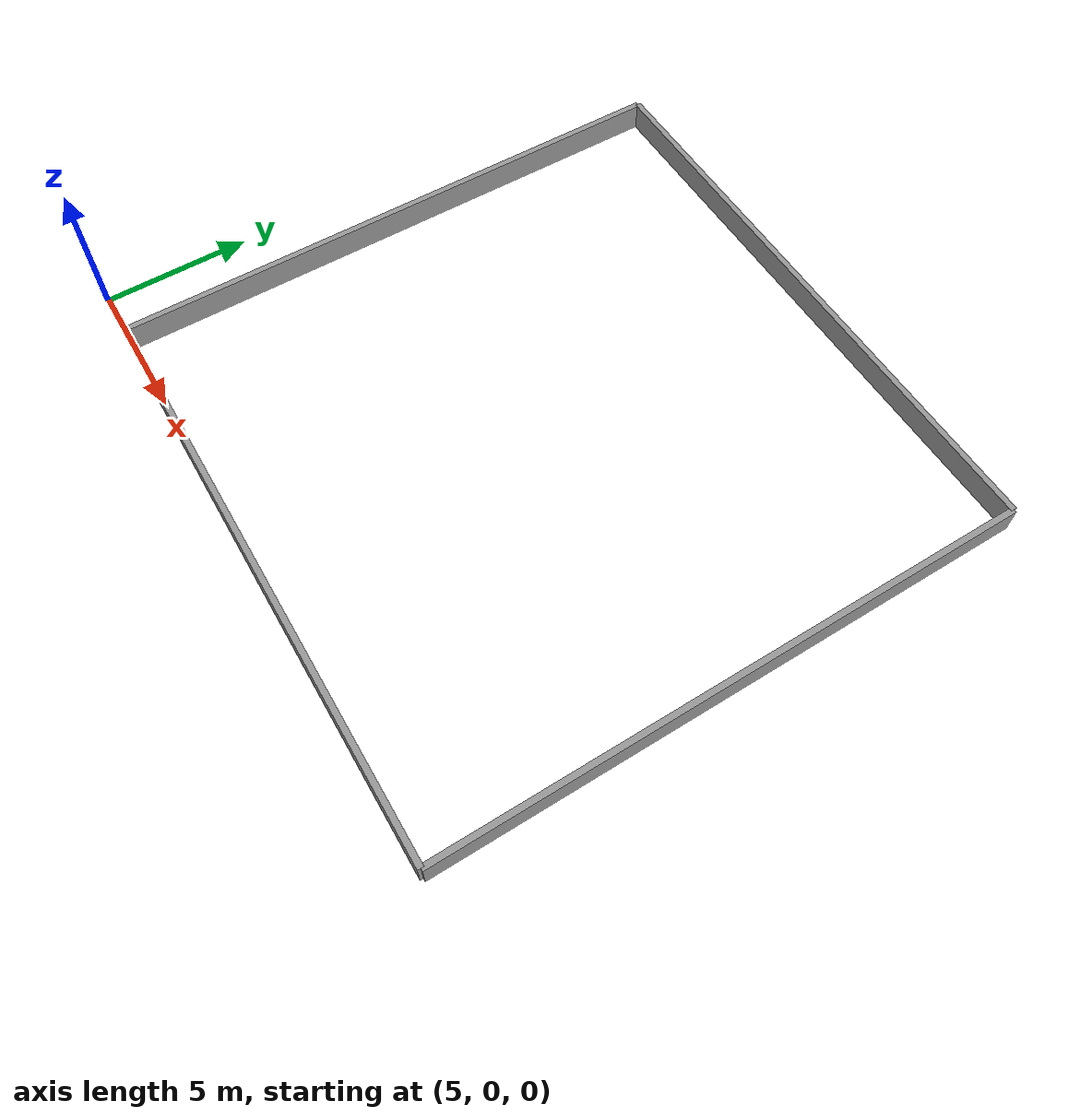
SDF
<?xml version='1.0'?>
<sdf version='1.7'>
  <model name='my_world'>
    <pose>17.3026 9.96227 0 0 -0 0</pose>
    <link name='Wall_0'>
      <collision name='Wall_0_Collision'>
        <geometry>
          <box>
            <size>20.0 0.2 1.0</size>
          </box>
        </geometry>
        <pose>0 0 0.5 0 -0 0</pose>
      </collision>
      <visual name='Wall_0_Visual'>
        <pose>0 0 0.5 0 -0 0</pose>
        <geometry>
          <box>
            <size>20.0 0.2 1.0</size>
          </box>
        </geometry>
        <material>
          <script>
            <uri>file://media/materials/scripts/gazebo.material</uri>
            <name>Gazebo/Grey</name>
          </script>
          <ambient>1 1 1 1</ambient>
        </material>
        <meta>
          <layer>0</layer>
        </meta>
      </visual>
      <pose>0 10.0 0 0 0 0</pose>
    </link>
    <link name='Wall_1'>
      <collision name='Wall_1_Collision'>
        <geometry>
          <box>
            <size>20.0 0.2 1.0</size>
          </box>
        </geometry>
        <pose>0 0 0.5 0 -0 0</pose>
      </collision>
      <visual name='Wall_1_Visual'>
        <pose>0 0 0.5 0 -0 0</pose>
        <geometry>
          <box>
            <size>20.0 0.2 1.0</size>
          </box>
        </geometry>
        <material>
          <script>
            <uri>file://media/materials/scripts/gazebo.material</uri>
            <name>Gazebo/Grey</name>
          </script>
          <ambient>1 1 1 1</ambient>
        </material>
        <meta>
          <layer>0</layer>
        </meta>
      </visual>
      <pose>0 -10.0 0 0 0 0</pose>
    </link>
    <link name='Wall_2'>
      <collision name='Wall_2_Collision'>
        <geometry>
          <box>
            <size>0.2 20.0 1.0</size>
          </box>
        </geometry>
        <pose>0 0 0.5 0 -0 0</pose>
      </collision>
      <visual name='Wall_2_Visual'>
        <pose>0 0 0.5 0 -0 0</pose>
        <geometry>
          <box>
            <size>0.2 20.0 1.0</size>
          </box>
        </geometry>
        <material>
          <script>
            <uri>file://media/materials/scripts/gazebo.material</uri>
            <name>Gazebo/Grey</name>
          </script>
          <ambient>1 1 1 1</ambient>
        </material>
        <meta>
          <layer>0</layer>
        </meta>
      </visual>
      <pose>10.0 0 0 0 0 0</pose>
    </link>
    <link name='Wall_3'>
      <collision name='Wall_3_Collision'>
        <geometry>
          <box>
            <size>0.2 20.0 1.0</size>
          </box>
        </geometry>
        <pose>0 0 0.5 0 -0 0</pose>
      </collision>
      <visual name='Wall_3_Visual'>
        <pose>0 0 0.5 0 -0 0</pose>
        <geometry>
          <box>
            <size>0.2 20.0 1.0</size>
          </box>
        </geometry>
        <material>
          <script>
            <uri>file://media/materials/scripts/gazebo.material</uri>
            <name>Gazebo/Grey</name>
          </script>
          <ambient>1 1 1 1</ambient>
        </material>
        <meta>
          <layer>0</layer>
        </meta>
      </visual>
      <pose>-10.0 0 0 0 0 0</pose>
    </link>
    <static>1</static>
  </model>
</sdf>
